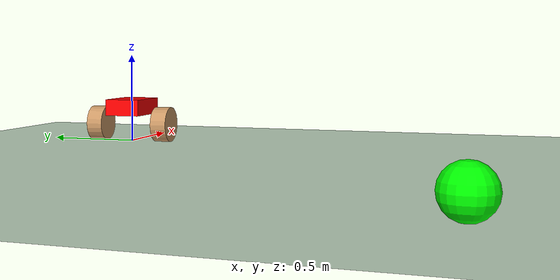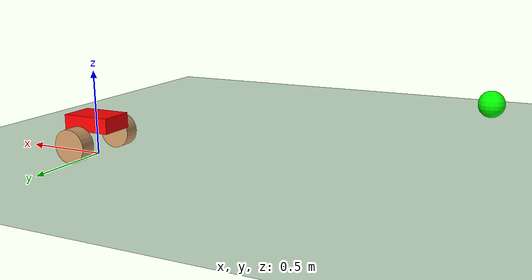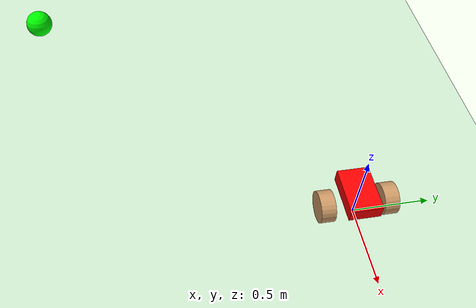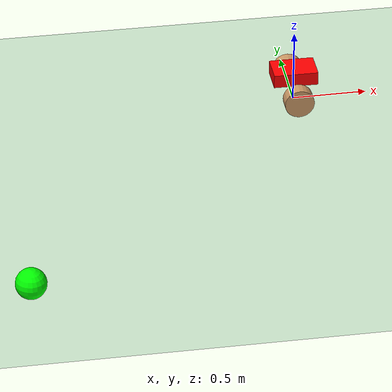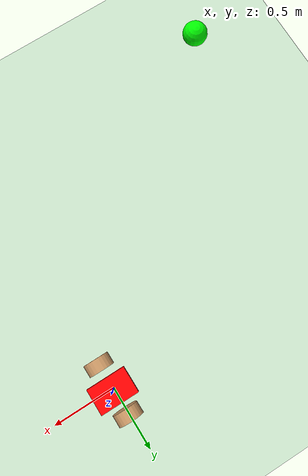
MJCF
<mujoco model='wheeled'>
  <compiler inertiafromgeom='true' coordinate='local' angle='radian' settotalmass='14' />
  <default>
    <geom contype='1' conaffinity='0' condim='3' friction='.4 .4 .4' rgba='0.8 0.6 .4 1' solimp='0.0 0.8 0.01' solref='0.02 1' />
  </default>
  <size nstack='300000' nuser_geom='1' />
  <option timestep='0.01' gravity='0 0 -9.81' />
  <asset>
    <texture type="skybox" builtin="gradient" width="100" height="100" rgb1="1 1 1" rgb2="0 0 0" />
    <texture name="texgeom" type="cube" builtin="flat" mark="cross" width="127" height="1278" rgb1="0.8 0.6 0.4" rgb2="0.8 0.6 0.4" markrgb="1 1 1" random="0.01" />
    <texture name="texplane" type="2d" builtin="checker" rgb1="0 0 0" rgb2="0.8 0.8 0.8" width="100" height="100" />
    <material name='MatPlane' texture="texplane" shininess="1" texrepeat="60 60" specular="1"  reflectance="0.5" />
    <material name='geom' texture="texgeom" texuniform="true" />
  </asset>
  <worldbody>
    <light directional="true" cutoff="100" exponent="1" diffuse="1 1 1" specular=".1 .1 .1" pos="0 0 1.3" dir="-0 0 -1.3" />
    <geom name='floor' material="MatPlane" pos='0 0 0' size='40 40 40' type='plane' conaffinity='1' rgba='0.8 0.9 0.8 1' condim='3' />
    <body name='car' pos='0 0 -0.4'>
      <geom name='body' type='box' pos ='0 0 .6' rgba="1 0 0 1" size='0.15 0.1 0.046' />
      <joint name="xmove" type="slide" limited="false" pos="0 0 0" axis="1 0 0" margin="0.01" armature="0" damping="0" />
      <joint name="ymove" type="slide" limited="false" pos="0 0 0" axis="0 1 0" margin="0.01" armature="0" damping="0" />
      <joint name="zmove" type="slide" limited="true" range="-1 0.03" pos="0 0 0" axis="0 0 1" margin="0.01" armature="0" damping="0" />
      <joint name="zrotate" type="hinge" limited="false" pos="0 0 0" axis="0 0 1" margin="0.01" armature="0" damping="0" />

      <body name='wheelbody1' pos='0 -0.2 0'>
        <geom name='wheel1' type='cylinder' axisangle="1 0 0 1.57" pos ='0 0 0.5' size='0.1 0.046' />
        <joint name="rotate_wheels1" type="hinge" limited="false" pos="0 0 0.5" axis="0 1 0" margin="0.01" armature="0" damping="0" />
      </body>

      <body name='wheelbody2' pos='0 0.2 0'>
        <geom name='wheel2' type='cylinder' axisangle="1 0 0 1.57" pos ='0 0 0.5' size='0.1 0.046' />
        <joint name="rotate_wheels2" type="hinge" limited="false" pos="0 0 0.5" axis="0 1 0" margin="0.01" armature="0" damping="0" />
      </body>
    </body>

    <body name="goal" pos="-2 -2 0.1">
      <geom name="goal" contype='0' conaffinity='0' condim='1' type='sphere' rgba='0 1 0 1' pos="0 0 0" size="0.1"/>
    </body>

  </worldbody>
  <actuator>
    <motor name='rotate_wheels1' ctrlrange='-2 2' joint='rotate_wheels1' ctrllimited='true' />
    <motor name='rotate_wheels2' ctrlrange='-2 2' joint='rotate_wheels2' ctrllimited='true'/>
  </actuator>
</mujoco>
